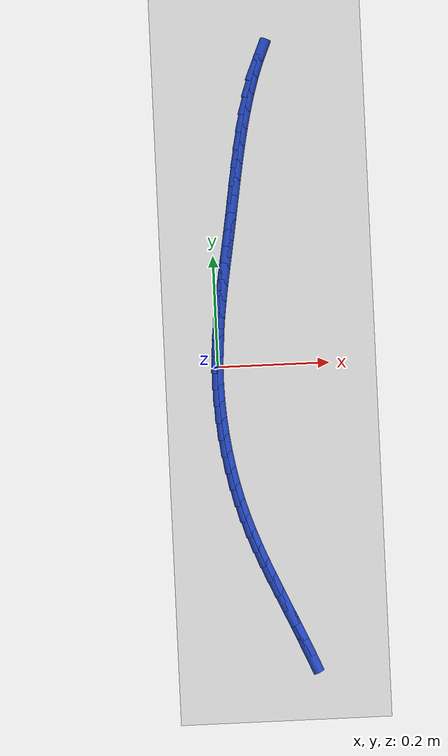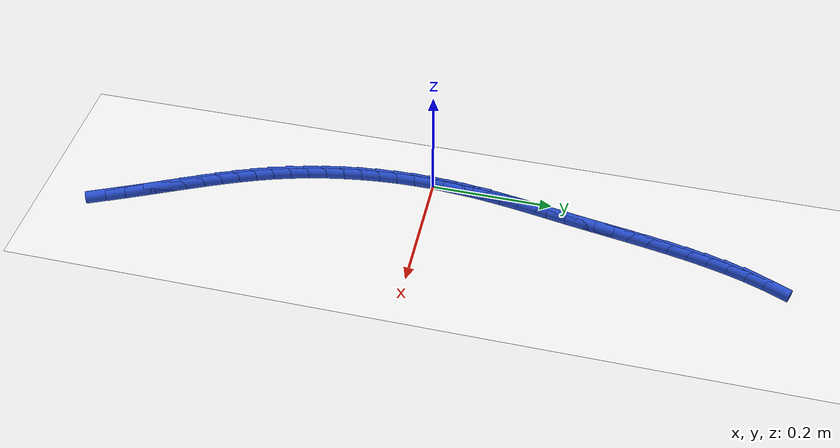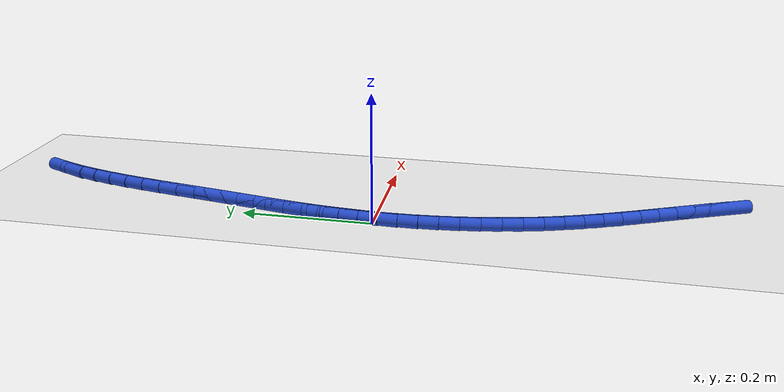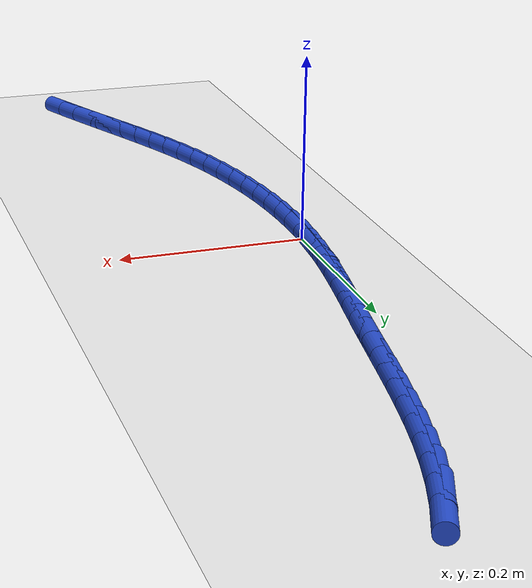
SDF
<sdf version="1.6">
 <world name="default">
  <model name="ground_plane">
   <static>1</static>
   <link name="link">
    <collision name="collision">
     <geometry><plane><normal>0 0 1</normal><size>100 100</size></plane></geometry>
     <surface><friction><ode><mu>100</mu><mu2>50</mu2></ode></friction></surface>
    </collision>
    <visual name="visual">
     <cast_shadows>0</cast_shadows>
     <geometry><plane><normal>0 0 1</normal><size>100 100</size></plane></geometry>
     <material>
      <script><uri>file://media/materials/scripts/gazebo.material</uri><name>Gazebo/WhiteGlow</name></script>
     </material>
    </visual>
   </link>
  </model>
  <model name="line">
   <link name="link_0">
    <pose>1.8214596497756474e-17 6.245004513516506e-17 0.01 0 1.57 1.5237638936106588</pose>
    <collision name="collision">
     <geometry><cylinder><radius>0.01</radius><length>0.08</length></cylinder></geometry>
    </collision>
    <visual name="visual">
     <material>
      <script><name>Gazebo/Blue</name><uri>file://media/materials/scripts/gazebo.material</uri></script>
     </material>
     <geometry><cylinder><radius>0.01</radius><length>0.08</length></cylinder></geometry>
    </visual>
   </link>
   <link name="link_1">
    <pose>0.001388095840938239 0.029491822635947733 0.01 0 1.57 1.4903044972762696</pose>
    <collision name="collision">
     <geometry><cylinder><radius>0.01</radius><length>0.08</length></cylinder></geometry>
    </collision>
    <visual name="visual">
     <material>
      <script><name>Gazebo/Blue</name><uri>file://media/materials/scripts/gazebo.material</uri></script>
     </material>
     <geometry><cylinder><radius>0.01</radius><length>0.08</length></cylinder></geometry>
    </visual>
   </link>
   <link name="link_2">
    <pose>0.0037495693808278323 0.05876648822106973 0.01 0 1.57 1.4618585309909409</pose>
    <collision name="collision">
     <geometry><cylinder><radius>0.01</radius><length>0.08</length></cylinder></geometry>
    </collision>
    <visual name="visual">
     <material>
      <script><name>Gazebo/Blue</name><uri>file://media/materials/scripts/gazebo.material</uri></script>
     </material>
     <geometry><cylinder><radius>0.01</radius><length>0.08</length></cylinder></geometry>
    </visual>
   </link>
   <link name="link_3">
    <pose>0.006939304391595864 0.08793090258505902 0.01 0 1.57 1.4387590662165866</pose>
    <collision name="collision">
     <geometry><cylinder><radius>0.01</radius><length>0.08</length></cylinder></geometry>
    </collision>
    <visual name="visual">
     <material>
      <script><name>Gazebo/Blue</name><uri>file://media/materials/scripts/gazebo.material</uri></script>
     </material>
     <geometry><cylinder><radius>0.01</radius><length>0.08</length></cylinder></geometry>
    </visual>
   </link>
   <link name="link_4">
    <pose>0.010812184645169386 0.1170919715576085 0.01 0 1.57 1.4211974750650884</pose>
    <collision name="collision">
     <geometry><cylinder><radius>0.01</radius><length>0.08</length></cylinder></geometry>
    </collision>
    <visual name="visual">
     <material>
      <script><name>Gazebo/Blue</name><uri>file://media/materials/scripts/gazebo.material</uri></script>
     </material>
     <geometry><cylinder><radius>0.01</radius><length>0.08</length></cylinder></geometry>
    </visual>
   </link>
   <link name="link_5">
    <pose>0.015223093913475459 0.14635660096841105 0.01 0 1.57 1.409237766442982</pose>
    <collision name="collision">
     <geometry><cylinder><radius>0.01</radius><length>0.08</length></cylinder></geometry>
    </collision>
    <visual name="visual">
     <material>
      <script><name>Gazebo/Blue</name><uri>file://media/materials/scripts/gazebo.material</uri></script>
     </material>
     <geometry><cylinder><radius>0.01</radius><length>0.08</length></cylinder></geometry>
    </visual>
   </link>
   <link name="link_6">
    <pose>0.02002691596844115 0.17583169664715967 0.01 0 1.57 1.4028335881263194</pose>
    <collision name="collision">
     <geometry><cylinder><radius>0.01</radius><length>0.08</length></cylinder></geometry>
    </collision>
    <visual name="visual">
     <material>
      <script><name>Gazebo/Blue</name><uri>file://media/materials/scripts/gazebo.material</uri></script>
     </material>
     <geometry><cylinder><radius>0.01</radius><length>0.08</length></cylinder></geometry>
    </visual>
   </link>
   <link name="link_7">
    <pose>0.0250785345819935 0.20562416442354708 0.01 0 1.57 1.4018448797821952</pose>
    <collision name="collision">
     <geometry><cylinder><radius>0.01</radius><length>0.08</length></cylinder></geometry>
    </collision>
    <visual name="visual">
     <material>
      <script><name>Gazebo/Blue</name><uri>file://media/materials/scripts/gazebo.material</uri></script>
     </material>
     <geometry><cylinder><radius>0.01</radius><length>0.08</length></cylinder></geometry>
    </visual>
   </link>
   <link name="link_8">
    <pose>0.030232833526059592 0.23584091012726643 0.01 0 1.57 1.40602227225799</pose>
    <collision name="collision">
     <geometry><cylinder><radius>0.01</radius><length>0.08</length></cylinder></geometry>
    </collision>
    <visual name="visual">
     <material>
      <script><name>Gazebo/Blue</name><uri>file://media/materials/scripts/gazebo.material</uri></script>
     </material>
     <geometry><cylinder><radius>0.01</radius><length>0.08</length></cylinder></geometry>
    </visual>
   </link>
   <link name="link_9">
    <pose>0.03534551819406179 0.2665880449480147 0.01 0 1.57 1.4115428015195102</pose>
    <collision name="collision">
     <geometry><cylinder><radius>0.01</radius><length>0.08</length></cylinder></geometry>
    </collision>
    <visual name="visual">
     <material>
      <script><name>Gazebo/Blue</name><uri>file://media/materials/scripts/gazebo.material</uri></script>
     </material>
     <geometry><cylinder><radius>0.01</radius><length>0.08</length></cylinder></geometry>
    </visual>
   </link>
   <link name="link_10">
    <pose>0.04037084859359921 0.29787636192883105 0.01 0 1.57 1.4115779561351656</pose>
    <collision name="collision">
     <geometry><cylinder><radius>0.01</radius><length>0.08</length></cylinder></geometry>
    </collision>
    <visual name="visual">
     <material>
      <script><name>Gazebo/Blue</name><uri>file://media/materials/scripts/gazebo.material</uri></script>
     </material>
     <geometry><cylinder><radius>0.01</radius><length>0.08</length></cylinder></geometry>
    </visual>
   </link>
   <link name="link_11">
    <pose>0.045454030789544374 0.3295319785961077 0.01 0 1.57 1.4055416378496919</pose>
    <collision name="collision">
     <geometry><cylinder><radius>0.01</radius><length>0.08</length></cylinder></geometry>
    </collision>
    <visual name="visual">
     <material>
      <script><name>Gazebo/Blue</name><uri>file://media/materials/scripts/gazebo.material</uri></script>
     </material>
     <geometry><cylinder><radius>0.01</radius><length>0.08</length></cylinder></geometry>
    </visual>
   </link>
   <link name="link_12">
    <pose>0.05076214503595253 0.3613598566207763 0.01 0 1.57 1.3934585145236462</pose>
    <collision name="collision">
     <geometry><cylinder><radius>0.01</radius><length>0.08</length></cylinder></geometry>
    </collision>
    <visual name="visual">
     <material>
      <script><name>Gazebo/Blue</name><uri>file://media/materials/scripts/gazebo.material</uri></script>
     </material>
     <geometry><cylinder><radius>0.01</radius><length>0.08</length></cylinder></geometry>
    </visual>
   </link>
   <link name="link_13">
    <pose>0.056462271586878894 0.39316495767376775 0.01 0 1.57 1.375174199452225</pose>
    <collision name="collision">
     <geometry><cylinder><radius>0.01</radius><length>0.08</length></cylinder></geometry>
    </collision>
    <visual name="visual">
     <material>
      <script><name>Gazebo/Blue</name><uri>file://media/materials/scripts/gazebo.material</uri></script>
     </material>
     <geometry><cylinder><radius>0.01</radius><length>0.08</length></cylinder></geometry>
    </visual>
   </link>
   <link name="link_14">
    <pose>0.06272149069637867 0.4247522434260134 0.01 0 1.57 1.3503630659627126</pose>
    <collision name="collision">
     <geometry><cylinder><radius>0.01</radius><length>0.08</length></cylinder></geometry>
    </collision>
    <visual name="visual">
     <material>
      <script><name>Gazebo/Blue</name><uri>file://media/materials/scripts/gazebo.material</uri></script>
     </material>
     <geometry><cylinder><radius>0.01</radius><length>0.08</length></cylinder></geometry>
    </visual>
   </link>
   <link name="link_15">
    <pose>0.06970688261850713 0.45592667554844485 0.01 0 1.57 1.3185332928578133</pose>
    <collision name="collision">
     <geometry><cylinder><radius>0.01</radius><length>0.08</length></cylinder></geometry>
    </collision>
    <visual name="visual">
     <material>
      <script><name>Gazebo/Blue</name><uri>file://media/materials/scripts/gazebo.material</uri></script>
     </material>
     <geometry><cylinder><radius>0.01</radius><length>0.08</length></cylinder></geometry>
    </visual>
   </link>
   <link name="link_16">
    <pose>0.0775855276073195 0.4864932157119933 0.01 0 1.57 1.2790345468325868</pose>
    <collision name="collision">
     <geometry><cylinder><radius>0.01</radius><length>0.08</length></cylinder></geometry>
    </collision>
    <visual name="visual">
     <material>
      <script><name>Gazebo/Blue</name><uri>file://media/materials/scripts/gazebo.material</uri></script>
     </material>
     <geometry><cylinder><radius>0.01</radius><length>0.08</length></cylinder></geometry>
    </visual>
   </link>
   <link name="link_17">
    <pose>0.08652450591687098 0.5162568255875898 0.01 0 1.57 1.2310767880075248</pose>
    <collision name="collision">
     <geometry><cylinder><radius>0.01</radius><length>0.08</length></cylinder></geometry>
    </collision>
    <visual name="visual">
     <material>
      <script><name>Gazebo/Blue</name><uri>file://media/materials/scripts/gazebo.material</uri></script>
     </material>
     <geometry><cylinder><radius>0.01</radius><length>0.08</length></cylinder></geometry>
    </visual>
   </link>
   <link name="link_18">
    <pose>0.09669089780121684 0.5450224668461662 0.01 0 1.57 1.1737733855634318</pose>
    <collision name="collision">
     <geometry><cylinder><radius>0.01</radius><length>0.08</length></cylinder></geometry>
    </collision>
    <visual name="visual">
     <material>
      <script><name>Gazebo/Blue</name><uri>file://media/materials/scripts/gazebo.material</uri></script>
     </material>
     <geometry><cylinder><radius>0.01</radius><length>0.08</length></cylinder></geometry>
    </visual>
   </link>
   <link name="link_222">
    <pose>0.1403973716407551 -0.5149661745253015 0.01 0 1.57 -1.1622893511279797</pose>
    <collision name="collision">
     <geometry><cylinder><radius>0.01</radius><length>0.08</length></cylinder></geometry>
    </collision>
    <visual name="visual">
     <material>
      <script><name>Gazebo/Blue</name><uri>file://media/materials/scripts/gazebo.material</uri></script>
     </material>
     <geometry><cylinder><radius>0.01</radius><length>0.08</length></cylinder></geometry>
    </visual>
   </link>
   <link name="link_223">
    <pose>0.12759324781389023 -0.48538570058620095 0.01 0 1.57 -1.151477940652462</pose>
    <collision name="collision">
     <geometry><cylinder><radius>0.01</radius><length>0.08</length></cylinder></geometry>
    </collision>
    <visual name="visual">
     <material>
      <script><name>Gazebo/Blue</name><uri>file://media/materials/scripts/gazebo.material</uri></script>
     </material>
     <geometry><cylinder><radius>0.01</radius><length>0.08</length></cylinder></geometry>
    </visual>
   </link>
   <link name="link_224">
    <pose>0.11481986646947659 -0.45673010678773696 0.01 0 1.57 -1.1460125062094337</pose>
    <collision name="collision">
     <geometry><cylinder><radius>0.01</radius><length>0.08</length></cylinder></geometry>
    </collision>
    <visual name="visual">
     <material>
      <script><name>Gazebo/Blue</name><uri>file://media/materials/scripts/gazebo.material</uri></script>
     </material>
     <geometry><cylinder><radius>0.01</radius><length>0.08</length></cylinder></geometry>
    </visual>
   </link>
   <link name="link_225">
    <pose>0.10219259534932801 -0.4288135980342887 0.01 0 1.57 -1.1466496757194868</pose>
    <collision name="collision">
     <geometry><cylinder><radius>0.01</radius><length>0.08</length></cylinder></geometry>
    </collision>
    <visual name="visual">
     <material>
      <script><name>Gazebo/Blue</name><uri>file://media/materials/scripts/gazebo.material</uri></script>
     </material>
     <geometry><cylinder><radius>0.01</radius><length>0.08</length></cylinder></geometry>
    </visual>
   </link>
   <link name="link_226">
    <pose>0.0898317975595363 -0.40143977505182493 0.01 0 1.57 -1.1537552398281814</pose>
    <collision name="collision">
     <geometry><cylinder><radius>0.01</radius><length>0.08</length></cylinder></geometry>
    </collision>
    <visual name="visual">
     <material>
      <script><name>Gazebo/Blue</name><uri>file://media/materials/scripts/gazebo.material</uri></script>
     </material>
     <geometry><cylinder><radius>0.01</radius><length>0.08</length></cylinder></geometry>
    </visual>
   </link>
   <link name="link_227">
    <pose>0.07785783620619334 -0.37441223856631456 0.01 0 1.57 -1.167547429385958</pose>
    <collision name="collision">
     <geometry><cylinder><radius>0.01</radius><length>0.08</length></cylinder></geometry>
    </collision>
    <visual name="visual">
     <material>
      <script><name>Gazebo/Blue</name><uri>file://media/materials/scripts/gazebo.material</uri></script>
     </material>
     <geometry><cylinder><radius>0.01</radius><length>0.08</length></cylinder></geometry>
    </visual>
   </link>
   <link name="link_228">
    <pose>0.06639107439539102 -0.34753458930372644 0.01 0 1.57 -1.188065545468401</pose>
    <collision name="collision">
     <geometry><cylinder><radius>0.01</radius><length>0.08</length></cylinder></geometry>
    </collision>
    <visual name="visual">
     <material>
      <script><name>Gazebo/Blue</name><uri>file://media/materials/scripts/gazebo.material</uri></script>
     </material>
     <geometry><cylinder><radius>0.01</radius><length>0.08</length></cylinder></geometry>
    </visual>
   </link>
   <link name="link_229">
    <pose>0.0555518752332213 -0.32061042799002964 0.01 0 1.57 -1.215139532842793</pose>
    <collision name="collision">
     <geometry><cylinder><radius>0.01</radius><length>0.08</length></cylinder></geometry>
    </collision>
    <visual name="visual">
     <material>
      <script><name>Gazebo/Blue</name><uri>file://media/materials/scripts/gazebo.material</uri></script>
     </material>
     <geometry><cylinder><radius>0.01</radius><length>0.08</length></cylinder></geometry>
    </visual>
   </link>
   <link name="link_230">
    <pose>0.04546060182577578 -0.2934433553511922 0.01 0 1.57 -1.2483659707754091</pose>
    <collision name="collision">
     <geometry><cylinder><radius>0.01</radius><length>0.08</length></cylinder></geometry>
    </collision>
    <visual name="visual">
     <material>
      <script><name>Gazebo/Blue</name><uri>file://media/materials/scripts/gazebo.material</uri></script>
     </material>
     <geometry><cylinder><radius>0.01</radius><length>0.08</length></cylinder></geometry>
    </visual>
   </link>
   <link name="link_231">
    <pose>0.036237617279146886 -0.26583697211318463 0.01 0 1.57 -1.2866410264378927</pose>
    <collision name="collision">
     <geometry><cylinder><radius>0.01</radius><length>0.08</length></cylinder></geometry>
    </collision>
    <visual name="visual">
     <material>
      <script><name>Gazebo/Blue</name><uri>file://media/materials/scripts/gazebo.material</uri></script>
     </material>
     <geometry><cylinder><radius>0.01</radius><length>0.08</length></cylinder></geometry>
    </visual>
   </link>
   <link name="link_232">
    <pose>0.027995649391707907 -0.2376167205297557 0.01 0 1.57 -1.3254790142292925</pose>
    <collision name="collision">
     <geometry><cylinder><radius>0.01</radius><length>0.08</length></cylinder></geometry>
    </collision>
    <visual name="visual">
     <material>
      <script><name>Gazebo/Blue</name><uri>file://media/materials/scripts/gazebo.material</uri></script>
     </material>
     <geometry><cylinder><radius>0.01</radius><length>0.08</length></cylinder></geometry>
    </visual>
   </link>
   <link name="link_233">
    <pose>0.020780775175706735 -0.2087987038012034 0.01 0 1.57 -1.3630577628296998</pose>
    <collision name="collision">
     <geometry><cylinder><radius>0.01</radius><length>0.08</length></cylinder></geometry>
    </collision>
    <visual name="visual">
     <material>
      <script><name>Gazebo/Blue</name><uri>file://media/materials/scripts/gazebo.material</uri></script>
     </material>
     <geometry><cylinder><radius>0.01</radius><length>0.08</length></cylinder></geometry>
    </visual>
   </link>
   <link name="link_234">
    <pose>0.01460467060571092 -0.17949743258537695 0.01 0 1.57 -1.3997152455192632</pose>
    <collision name="collision">
     <geometry><cylinder><radius>0.01</radius><length>0.08</length></cylinder></geometry>
    </collision>
    <visual name="visual">
     <material>
      <script><name>Gazebo/Blue</name><uri>file://media/materials/scripts/gazebo.material</uri></script>
     </material>
     <geometry><cylinder><radius>0.01</radius><length>0.08</length></cylinder></geometry>
    </visual>
   </link>
   <link name="link_235">
    <pose>0.009478724864723159 -0.149828237934818 0.01 0 1.57 -1.435788561092477</pose>
    <collision name="collision">
     <geometry><cylinder><radius>0.01</radius><length>0.08</length></cylinder></geometry>
    </collision>
    <visual name="visual">
     <material>
      <script><name>Gazebo/Blue</name><uri>file://media/materials/scripts/gazebo.material</uri></script>
     </material>
     <geometry><cylinder><radius>0.01</radius><length>0.08</length></cylinder></geometry>
    </visual>
   </link>
   <link name="link_236">
    <pose>0.005414327135746165 -0.11990645090206847 0.01 0 1.57 -1.471603470096742</pose>
    <collision name="collision">
     <geometry><cylinder><radius>0.01</radius><length>0.08</length></cylinder></geometry>
    </collision>
    <visual name="visual">
     <material>
      <script><name>Gazebo/Blue</name><uri>file://media/materials/scripts/gazebo.material</uri></script>
     </material>
     <geometry><cylinder><radius>0.01</radius><length>0.08</length></cylinder></geometry>
    </visual>
   </link>
   <link name="link_237">
    <pose>0.0024228666017826438 -0.08984740253967016 0.01 0 1.57 -1.5074810655647144</pose>
    <collision name="collision">
     <geometry><cylinder><radius>0.01</radius><length>0.08</length></cylinder></geometry>
    </collision>
    <visual name="visual">
     <material>
      <script><name>Gazebo/Blue</name><uri>file://media/materials/scripts/gazebo.material</uri></script>
     </material>
     <geometry><cylinder><radius>0.01</radius><length>0.08</length></cylinder></geometry>
    </visual>
   </link>
   <link name="link_238">
    <pose>0.0005157324458352685 -0.05976642390016411 0.01 0 1.57 -1.5437444369882862</pose>
    <collision name="collision">
     <geometry><cylinder><radius>0.01</radius><length>0.08</length></cylinder></geometry>
    </collision>
    <visual name="visual">
     <material>
      <script><name>Gazebo/Blue</name><uri>file://media/materials/scripts/gazebo.material</uri></script>
     </material>
     <geometry><cylinder><radius>0.01</radius><length>0.08</length></cylinder></geometry>
    </visual>
   </link>
   <link name="link_239">
    <pose>-0.0002956861490931526 -0.029778846036093754 0.01 0 1.57 1.5608672505715253</pose>
    <collision name="collision">
     <geometry><cylinder><radius>0.01</radius><length>0.08</length></cylinder></geometry>
    </collision>
    <visual name="visual">
     <material>
      <script><name>Gazebo/Blue</name><uri>file://media/materials/scripts/gazebo.material</uri></script>
     </material>
     <geometry><cylinder><radius>0.01</radius><length>0.08</length></cylinder></geometry>
    </visual>
   </link>
   <link name="link_240">
    <pose>2.5153490401663703e-17 -1.1102230246251565e-16 0.01 0 1.57 1.5228212682028472</pose>
    <collision name="collision">
     <geometry><cylinder><radius>0.01</radius><length>0.08</length></cylinder></geometry>
    </collision>
    <visual name="visual">
     <material>
      <script><name>Gazebo/Blue</name><uri>file://media/materials/scripts/gazebo.material</uri></script>
     </material>
     <geometry><cylinder><radius>0.01</radius><length>0.08</length></cylinder></geometry>
    </visual>
   </link>
   <link name="link_241">
    <pose>0.0014141800761175074 0.029454783155574978 0.01 0 1.57 1.4833401943209952</pose>
    <collision name="collision">
     <geometry><cylinder><radius>0.01</radius><length>0.08</length></cylinder></geometry>
    </collision>
    <visual name="visual">
     <material>
      <script><name>Gazebo/Blue</name><uri>file://media/materials/scripts/gazebo.material</uri></script>
     </material>
     <geometry><cylinder><radius>0.01</radius><length>0.08</length></cylinder></geometry>
    </visual>
   </link>
   <link name="link_242">
    <pose>0.003958243262262004 0.05847017237808968 0.01 0 1.57 1.503202663434442</pose>
    <collision name="collision">
     <geometry><cylinder><radius>0.01</radius><length>0.08</length></cylinder></geometry>
    </collision>
    <visual name="visual">
     <material>
      <script><name>Gazebo/Blue</name><uri>file://media/materials/scripts/gazebo.material</uri></script>
     </material>
     <geometry><cylinder><radius>0.01</radius><length>0.08</length></cylinder></geometry>
    </visual>
   </link>
  </model>
 </world>
</sdf>
